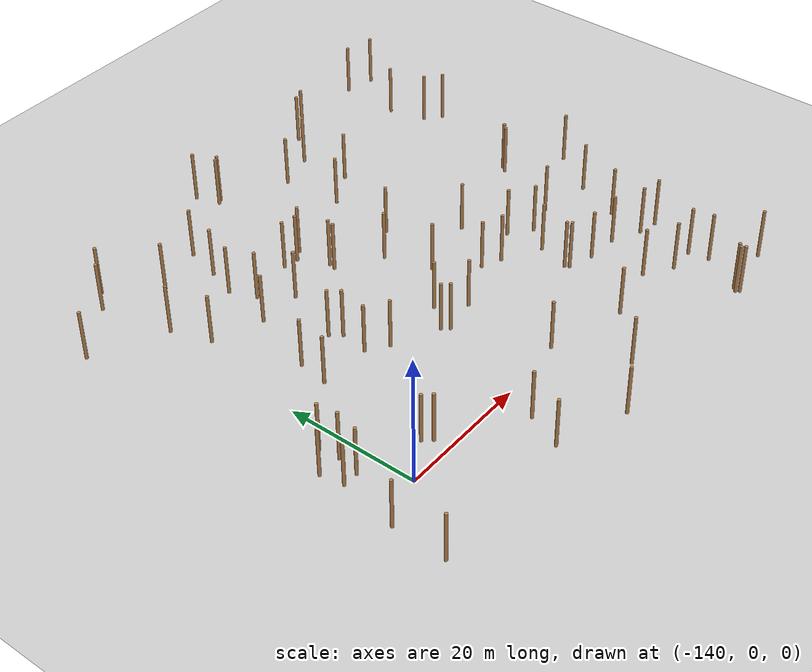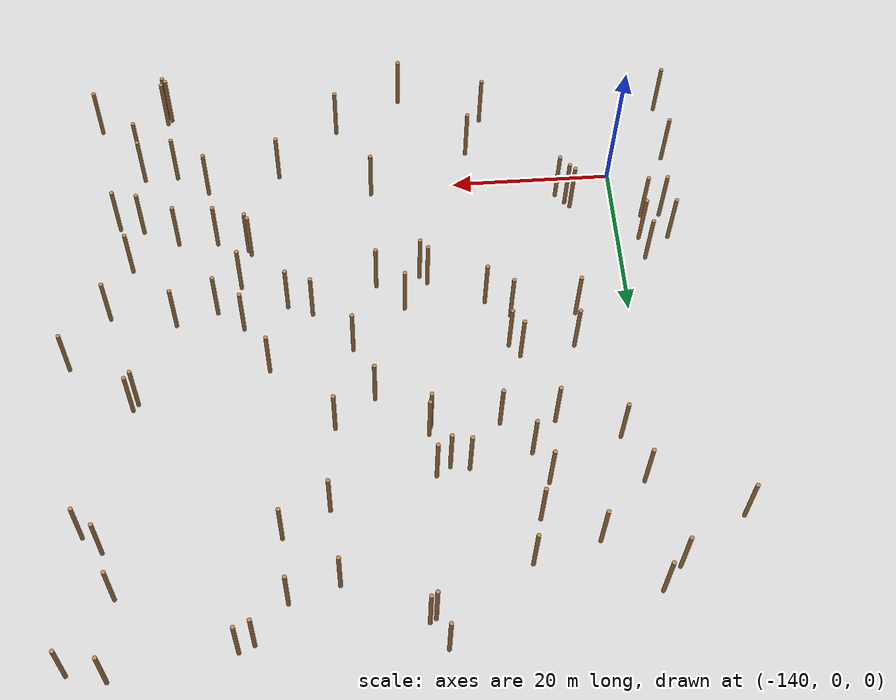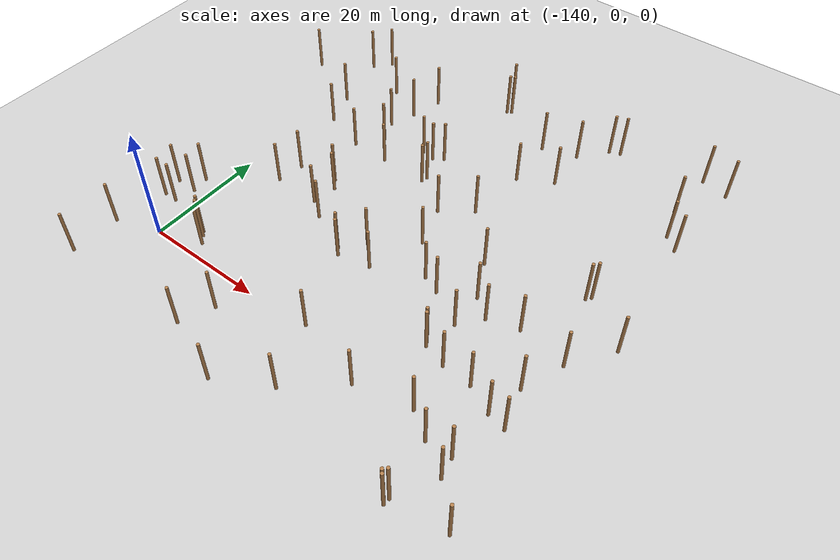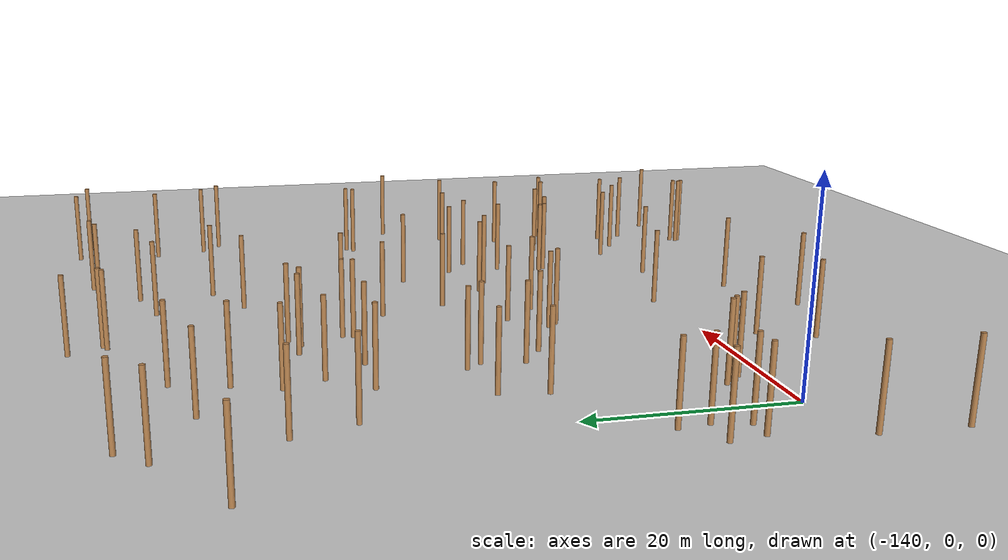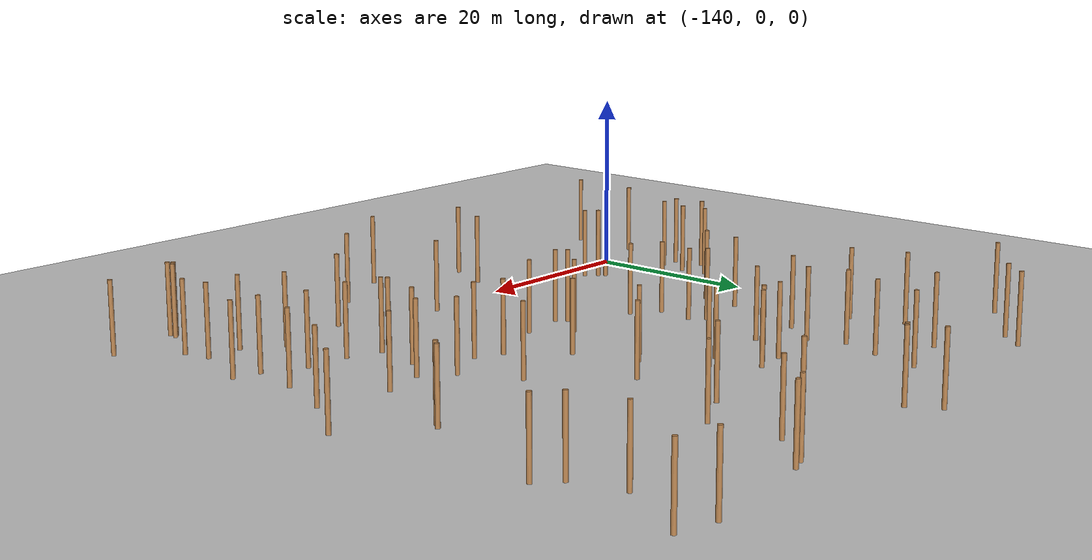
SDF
<sdf version="1.5">
 <world name="padure_tactica">
  <include><uri>model://sun</uri></include>
  <include><uri>model://ground_plane</uri></include>
  <model name="tree_2">
   <static>true</static>
   <pose>-147.35 -2.47 4.0 0 0 0</pose>
   <link name="link">
    <collision name="collision">
     <geometry><cylinder><radius>0.25</radius><length>8.0</length></cylinder></geometry>
    </collision>
    <visual name="visual">
     <geometry><cylinder><radius>0.25</radius><length>8.0</length></cylinder></geometry>
     <material>
      <script><uri>file://media/materials/scripts/gazebo.material</uri><name>Gazebo/Wood</name></script>
     </material>
    </visual>
   </link>
  </model>
  <model name="tree_7">
   <static>true</static>
   <pose>-77.65 4.32 4.0 0 0 0</pose>
   <link name="link">
    <collision name="collision">
     <geometry><cylinder><radius>0.25</radius><length>8.0</length></cylinder></geometry>
    </collision>
    <visual name="visual">
     <geometry><cylinder><radius>0.25</radius><length>8.0</length></cylinder></geometry>
     <material>
      <script><uri>file://media/materials/scripts/gazebo.material</uri><name>Gazebo/Wood</name></script>
     </material>
    </visual>
   </link>
  </model>
  <model name="tree_23">
   <static>true</static>
   <pose>-80.36 29.67 4.0 0 0 0</pose>
   <link name="link">
    <collision name="collision">
     <geometry><cylinder><radius>0.25</radius><length>8.0</length></cylinder></geometry>
    </collision>
    <visual name="visual">
     <geometry><cylinder><radius>0.25</radius><length>8.0</length></cylinder></geometry>
     <material>
      <script><uri>file://media/materials/scripts/gazebo.material</uri><name>Gazebo/Wood</name></script>
     </material>
    </visual>
   </link>
  </model>
  <model name="tree_27">
   <static>true</static>
   <pose>-122.47 18.02 4.0 0 0 0</pose>
   <link name="link">
    <collision name="collision">
     <geometry><cylinder><radius>0.25</radius><length>8.0</length></cylinder></geometry>
    </collision>
    <visual name="visual">
     <geometry><cylinder><radius>0.25</radius><length>8.0</length></cylinder></geometry>
     <material>
      <script><uri>file://media/materials/scripts/gazebo.material</uri><name>Gazebo/Wood</name></script>
     </material>
    </visual>
   </link>
  </model>
  <model name="tree_40">
   <static>true</static>
   <pose>-80.03 -6.21 4.0 0 0 0</pose>
   <link name="link">
    <collision name="collision">
     <geometry><cylinder><radius>0.25</radius><length>8.0</length></cylinder></geometry>
    </collision>
    <visual name="visual">
     <geometry><cylinder><radius>0.25</radius><length>8.0</length></cylinder></geometry>
     <material>
      <script><uri>file://media/materials/scripts/gazebo.material</uri><name>Gazebo/Wood</name></script>
     </material>
    </visual>
   </link>
  </model>
  <model name="tree_42">
   <static>true</static>
   <pose>-76.77 17.58 4.0 0 0 0</pose>
   <link name="link">
    <collision name="collision">
     <geometry><cylinder><radius>0.25</radius><length>8.0</length></cylinder></geometry>
    </collision>
    <visual name="visual">
     <geometry><cylinder><radius>0.25</radius><length>8.0</length></cylinder></geometry>
     <material>
      <script><uri>file://media/materials/scripts/gazebo.material</uri><name>Gazebo/Wood</name></script>
     </material>
    </visual>
   </link>
  </model>
  <model name="tree_44">
   <static>true</static>
   <pose>-93.52 60.29 4.0 0 0 0</pose>
   <link name="link">
    <collision name="collision">
     <geometry><cylinder><radius>0.25</radius><length>8.0</length></cylinder></geometry>
    </collision>
    <visual name="visual">
     <geometry><cylinder><radius>0.25</radius><length>8.0</length></cylinder></geometry>
     <material>
      <script><uri>file://media/materials/scripts/gazebo.material</uri><name>Gazebo/Wood</name></script>
     </material>
    </visual>
   </link>
  </model>
  <model name="tree_46">
   <static>true</static>
   <pose>-89.89 7.35 4.0 0 0 0</pose>
   <link name="link">
    <collision name="collision">
     <geometry><cylinder><radius>0.25</radius><length>8.0</length></cylinder></geometry>
    </collision>
    <visual name="visual">
     <geometry><cylinder><radius>0.25</radius><length>8.0</length></cylinder></geometry>
     <material>
      <script><uri>file://media/materials/scripts/gazebo.material</uri><name>Gazebo/Wood</name></script>
     </material>
    </visual>
   </link>
  </model>
  <model name="tree_51">
   <static>true</static>
   <pose>-108.27 30.69 4.0 0 0 0</pose>
   <link name="link">
    <collision name="collision">
     <geometry><cylinder><radius>0.25</radius><length>8.0</length></cylinder></geometry>
    </collision>
    <visual name="visual">
     <geometry><cylinder><radius>0.25</radius><length>8.0</length></cylinder></geometry>
     <material>
      <script><uri>file://media/materials/scripts/gazebo.material</uri><name>Gazebo/Wood</name></script>
     </material>
    </visual>
   </link>
  </model>
  <model name="tree_59">
   <static>true</static>
   <pose>-84.79 19.02 4.0 0 0 0</pose>
   <link name="link">
    <collision name="collision">
     <geometry><cylinder><radius>0.25</radius><length>8.0</length></cylinder></geometry>
    </collision>
    <visual name="visual">
     <geometry><cylinder><radius>0.25</radius><length>8.0</length></cylinder></geometry>
     <material>
      <script><uri>file://media/materials/scripts/gazebo.material</uri><name>Gazebo/Wood</name></script>
     </material>
    </visual>
   </link>
  </model>
  <model name="tree_108">
   <static>true</static>
   <pose>-89.82 17.54 4.0 0 0 0</pose>
   <link name="link">
    <collision name="collision">
     <geometry><cylinder><radius>0.25</radius><length>8.0</length></cylinder></geometry>
    </collision>
    <visual name="visual">
     <geometry><cylinder><radius>0.25</radius><length>8.0</length></cylinder></geometry>
     <material>
      <script><uri>file://media/materials/scripts/gazebo.material</uri><name>Gazebo/Wood</name></script>
     </material>
    </visual>
   </link>
  </model>
  <model name="tree_112">
   <static>true</static>
   <pose>-84.78 -3.30 4.0 0 0 0</pose>
   <link name="link">
    <collision name="collision">
     <geometry><cylinder><radius>0.25</radius><length>8.0</length></cylinder></geometry>
    </collision>
    <visual name="visual">
     <geometry><cylinder><radius>0.25</radius><length>8.0</length></cylinder></geometry>
     <material>
      <script><uri>file://media/materials/scripts/gazebo.material</uri><name>Gazebo/Wood</name></script>
     </material>
    </visual>
   </link>
  </model>
  <model name="tree_114">
   <static>true</static>
   <pose>-127.62 42.91 4.0 0 0 0</pose>
   <link name="link">
    <collision name="collision">
     <geometry><cylinder><radius>0.25</radius><length>8.0</length></cylinder></geometry>
    </collision>
    <visual name="visual">
     <geometry><cylinder><radius>0.25</radius><length>8.0</length></cylinder></geometry>
     <material>
      <script><uri>file://media/materials/scripts/gazebo.material</uri><name>Gazebo/Wood</name></script>
     </material>
    </visual>
   </link>
  </model>
  <model name="tree_176">
   <static>true</static>
   <pose>-80.62 4.94 4.0 0 0 0</pose>
   <link name="link">
    <collision name="collision">
     <geometry><cylinder><radius>0.25</radius><length>8.0</length></cylinder></geometry>
    </collision>
    <visual name="visual">
     <geometry><cylinder><radius>0.25</radius><length>8.0</length></cylinder></geometry>
     <material>
      <script><uri>file://media/materials/scripts/gazebo.material</uri><name>Gazebo/Wood</name></script>
     </material>
    </visual>
   </link>
  </model>
  <model name="tree_177">
   <static>true</static>
   <pose>-83.97 -12.80 4.0 0 0 0</pose>
   <link name="link">
    <collision name="collision">
     <geometry><cylinder><radius>0.25</radius><length>8.0</length></cylinder></geometry>
    </collision>
    <visual name="visual">
     <geometry><cylinder><radius>0.25</radius><length>8.0</length></cylinder></geometry>
     <material>
      <script><uri>file://media/materials/scripts/gazebo.material</uri><name>Gazebo/Wood</name></script>
     </material>
    </visual>
   </link>
  </model>
  <model name="tree_180">
   <static>true</static>
   <pose>-73.15 62.40 4.0 0 0 0</pose>
   <link name="link">
    <collision name="collision">
     <geometry><cylinder><radius>0.25</radius><length>8.0</length></cylinder></geometry>
    </collision>
    <visual name="visual">
     <geometry><cylinder><radius>0.25</radius><length>8.0</length></cylinder></geometry>
     <material>
      <script><uri>file://media/materials/scripts/gazebo.material</uri><name>Gazebo/Wood</name></script>
     </material>
    </visual>
   </link>
  </model>
  <model name="tree_184">
   <static>true</static>
   <pose>-138.71 56.84 4.0 0 0 0</pose>
   <link name="link">
    <collision name="collision">
     <geometry><cylinder><radius>0.25</radius><length>8.0</length></cylinder></geometry>
    </collision>
    <visual name="visual">
     <geometry><cylinder><radius>0.25</radius><length>8.0</length></cylinder></geometry>
     <material>
      <script><uri>file://media/materials/scripts/gazebo.material</uri><name>Gazebo/Wood</name></script>
     </material>
    </visual>
   </link>
  </model>
  <model name="tree_197">
   <static>true</static>
   <pose>-92.99 20.03 4.0 0 0 0</pose>
   <link name="link">
    <collision name="collision">
     <geometry><cylinder><radius>0.25</radius><length>8.0</length></cylinder></geometry>
    </collision>
    <visual name="visual">
     <geometry><cylinder><radius>0.25</radius><length>8.0</length></cylinder></geometry>
     <material>
      <script><uri>file://media/materials/scripts/gazebo.material</uri><name>Gazebo/Wood</name></script>
     </material>
    </visual>
   </link>
  </model>
  <model name="tree_203">
   <static>true</static>
   <pose>-125.41 20.13 4.0 0 0 0</pose>
   <link name="link">
    <collision name="collision">
     <geometry><cylinder><radius>0.25</radius><length>8.0</length></cylinder></geometry>
    </collision>
    <visual name="visual">
     <geometry><cylinder><radius>0.25</radius><length>8.0</length></cylinder></geometry>
     <material>
      <script><uri>file://media/materials/scripts/gazebo.material</uri><name>Gazebo/Wood</name></script>
     </material>
    </visual>
   </link>
  </model>
  <model name="tree_228">
   <static>true</static>
   <pose>-114.32 35.80 4.0 0 0 0</pose>
   <link name="link">
    <collision name="collision">
     <geometry><cylinder><radius>0.25</radius><length>8.0</length></cylinder></geometry>
    </collision>
    <visual name="visual">
     <geometry><cylinder><radius>0.25</radius><length>8.0</length></cylinder></geometry>
     <material>
      <script><uri>file://media/materials/scripts/gazebo.material</uri><name>Gazebo/Wood</name></script>
     </material>
    </visual>
   </link>
  </model>
  <model name="tree_237">
   <static>true</static>
   <pose>-85.01 7.05 4.0 0 0 0</pose>
   <link name="link">
    <collision name="collision">
     <geometry><cylinder><radius>0.25</radius><length>8.0</length></cylinder></geometry>
    </collision>
    <visual name="visual">
     <geometry><cylinder><radius>0.25</radius><length>8.0</length></cylinder></geometry>
     <material>
      <script><uri>file://media/materials/scripts/gazebo.material</uri><name>Gazebo/Wood</name></script>
     </material>
    </visual>
   </link>
  </model>
  <model name="tree_290">
   <static>true</static>
   <pose>-126.12 47.38 4.0 0 0 0</pose>
   <link name="link">
    <collision name="collision">
     <geometry><cylinder><radius>0.25</radius><length>8.0</length></cylinder></geometry>
    </collision>
    <visual name="visual">
     <geometry><cylinder><radius>0.25</radius><length>8.0</length></cylinder></geometry>
     <material>
      <script><uri>file://media/materials/scripts/gazebo.material</uri><name>Gazebo/Wood</name></script>
     </material>
    </visual>
   </link>
  </model>
  <model name="tree_305">
   <static>true</static>
   <pose>-106.05 23.77 4.0 0 0 0</pose>
   <link name="link">
    <collision name="collision">
     <geometry><cylinder><radius>0.25</radius><length>8.0</length></cylinder></geometry>
    </collision>
    <visual name="visual">
     <geometry><cylinder><radius>0.25</radius><length>8.0</length></cylinder></geometry>
     <material>
      <script><uri>file://media/materials/scripts/gazebo.material</uri><name>Gazebo/Wood</name></script>
     </material>
    </visual>
   </link>
  </model>
  <model name="tree_307">
   <static>true</static>
   <pose>-79.75 30.44 4.0 0 0 0</pose>
   <link name="link">
    <collision name="collision">
     <geometry><cylinder><radius>0.25</radius><length>8.0</length></cylinder></geometry>
    </collision>
    <visual name="visual">
     <geometry><cylinder><radius>0.25</radius><length>8.0</length></cylinder></geometry>
     <material>
      <script><uri>file://media/materials/scripts/gazebo.material</uri><name>Gazebo/Wood</name></script>
     </material>
    </visual>
   </link>
  </model>
  <model name="tree_328">
   <static>true</static>
   <pose>-109.47 0.82 4.0 0 0 0</pose>
   <link name="link">
    <collision name="collision">
     <geometry><cylinder><radius>0.25</radius><length>8.0</length></cylinder></geometry>
    </collision>
    <visual name="visual">
     <geometry><cylinder><radius>0.25</radius><length>8.0</length></cylinder></geometry>
     <material>
      <script><uri>file://media/materials/scripts/gazebo.material</uri><name>Gazebo/Wood</name></script>
     </material>
    </visual>
   </link>
  </model>
  <model name="tree_347">
   <static>true</static>
   <pose>-129.21 34.95 4.0 0 0 0</pose>
   <link name="link">
    <collision name="collision">
     <geometry><cylinder><radius>0.25</radius><length>8.0</length></cylinder></geometry>
    </collision>
    <visual name="visual">
     <geometry><cylinder><radius>0.25</radius><length>8.0</length></cylinder></geometry>
     <material>
      <script><uri>file://media/materials/scripts/gazebo.material</uri><name>Gazebo/Wood</name></script>
     </material>
    </visual>
   </link>
  </model>
  <model name="tree_368">
   <static>true</static>
   <pose>-114.78 41.24 4.0 0 0 0</pose>
   <link name="link">
    <collision name="collision">
     <geometry><cylinder><radius>0.25</radius><length>8.0</length></cylinder></geometry>
    </collision>
    <visual name="visual">
     <geometry><cylinder><radius>0.25</radius><length>8.0</length></cylinder></geometry>
     <material>
      <script><uri>file://media/materials/scripts/gazebo.material</uri><name>Gazebo/Wood</name></script>
     </material>
    </visual>
   </link>
  </model>
  <model name="tree_369">
   <static>true</static>
   <pose>-142.69 9.75 4.0 0 0 0</pose>
   <link name="link">
    <collision name="collision">
     <geometry><cylinder><radius>0.25</radius><length>8.0</length></cylinder></geometry>
    </collision>
    <visual name="visual">
     <geometry><cylinder><radius>0.25</radius><length>8.0</length></cylinder></geometry>
     <material>
      <script><uri>file://media/materials/scripts/gazebo.material</uri><name>Gazebo/Wood</name></script>
     </material>
    </visual>
   </link>
  </model>
  <model name="tree_390">
   <static>true</static>
   <pose>-92.74 14.00 4.0 0 0 0</pose>
   <link name="link">
    <collision name="collision">
     <geometry><cylinder><radius>0.25</radius><length>8.0</length></cylinder></geometry>
    </collision>
    <visual name="visual">
     <geometry><cylinder><radius>0.25</radius><length>8.0</length></cylinder></geometry>
     <material>
      <script><uri>file://media/materials/scripts/gazebo.material</uri><name>Gazebo/Wood</name></script>
     </material>
    </visual>
   </link>
  </model>
  <model name="tree_416">
   <static>true</static>
   <pose>-91.76 60.99 4.0 0 0 0</pose>
   <link name="link">
    <collision name="collision">
     <geometry><cylinder><radius>0.25</radius><length>8.0</length></cylinder></geometry>
    </collision>
    <visual name="visual">
     <geometry><cylinder><radius>0.25</radius><length>8.0</length></cylinder></geometry>
     <material>
      <script><uri>file://media/materials/scripts/gazebo.material</uri><name>Gazebo/Wood</name></script>
     </material>
    </visual>
   </link>
  </model>
  <model name="tree_417">
   <static>true</static>
   <pose>-77.59 63.39 4.0 0 0 0</pose>
   <link name="link">
    <collision name="collision">
     <geometry><cylinder><radius>0.25</radius><length>8.0</length></cylinder></geometry>
    </collision>
    <visual name="visual">
     <geometry><cylinder><radius>0.25</radius><length>8.0</length></cylinder></geometry>
     <material>
      <script><uri>file://media/materials/scripts/gazebo.material</uri><name>Gazebo/Wood</name></script>
     </material>
    </visual>
   </link>
  </model>
  <model name="tree_426">
   <static>true</static>
   <pose>-133.39 20.32 4.0 0 0 0</pose>
   <link name="link">
    <collision name="collision">
     <geometry><cylinder><radius>0.25</radius><length>8.0</length></cylinder></geometry>
    </collision>
    <visual name="visual">
     <geometry><cylinder><radius>0.25</radius><length>8.0</length></cylinder></geometry>
     <material>
      <script><uri>file://media/materials/scripts/gazebo.material</uri><name>Gazebo/Wood</name></script>
     </material>
    </visual>
   </link>
  </model>
  <model name="tree_438">
   <static>true</static>
   <pose>-97.30 55.74 4.0 0 0 0</pose>
   <link name="link">
    <collision name="collision">
     <geometry><cylinder><radius>0.25</radius><length>8.0</length></cylinder></geometry>
    </collision>
    <visual name="visual">
     <geometry><cylinder><radius>0.25</radius><length>8.0</length></cylinder></geometry>
     <material>
      <script><uri>file://media/materials/scripts/gazebo.material</uri><name>Gazebo/Wood</name></script>
     </material>
    </visual>
   </link>
  </model>
  <model name="tree_440">
   <static>true</static>
   <pose>-112.60 18.31 4.0 0 0 0</pose>
   <link name="link">
    <collision name="collision">
     <geometry><cylinder><radius>0.25</radius><length>8.0</length></cylinder></geometry>
    </collision>
    <visual name="visual">
     <geometry><cylinder><radius>0.25</radius><length>8.0</length></cylinder></geometry>
     <material>
      <script><uri>file://media/materials/scripts/gazebo.material</uri><name>Gazebo/Wood</name></script>
     </material>
    </visual>
   </link>
  </model>
  <model name="tree_444">
   <static>true</static>
   <pose>-115.62 14.80 4.0 0 0 0</pose>
   <link name="link">
    <collision name="collision">
     <geometry><cylinder><radius>0.25</radius><length>8.0</length></cylinder></geometry>
    </collision>
    <visual name="visual">
     <geometry><cylinder><radius>0.25</radius><length>8.0</length></cylinder></geometry>
     <material>
      <script><uri>file://media/materials/scripts/gazebo.material</uri><name>Gazebo/Wood</name></script>
     </material>
    </visual>
   </link>
  </model>
  <model name="tree_455">
   <static>true</static>
   <pose>-74.95 -11.36 4.0 0 0 0</pose>
   <link name="link">
    <collision name="collision">
     <geometry><cylinder><radius>0.25</radius><length>8.0</length></cylinder></geometry>
    </collision>
    <visual name="visual">
     <geometry><cylinder><radius>0.25</radius><length>8.0</length></cylinder></geometry>
     <material>
      <script><uri>file://media/materials/scripts/gazebo.material</uri><name>Gazebo/Wood</name></script>
     </material>
    </visual>
   </link>
  </model>
  <model name="tree_476">
   <static>true</static>
   <pose>-138.56 43.41 4.0 0 0 0</pose>
   <link name="link">
    <collision name="collision">
     <geometry><cylinder><radius>0.25</radius><length>8.0</length></cylinder></geometry>
    </collision>
    <visual name="visual">
     <geometry><cylinder><radius>0.25</radius><length>8.0</length></cylinder></geometry>
     <material>
      <script><uri>file://media/materials/scripts/gazebo.material</uri><name>Gazebo/Wood</name></script>
     </material>
    </visual>
   </link>
  </model>
  <model name="tree_482">
   <static>true</static>
   <pose>-101.36 18.46 4.0 0 0 0</pose>
   <link name="link">
    <collision name="collision">
     <geometry><cylinder><radius>0.25</radius><length>8.0</length></cylinder></geometry>
    </collision>
    <visual name="visual">
     <geometry><cylinder><radius>0.25</radius><length>8.0</length></cylinder></geometry>
     <material>
      <script><uri>file://media/materials/scripts/gazebo.material</uri><name>Gazebo/Wood</name></script>
     </material>
    </visual>
   </link>
  </model>
  <model name="tree_521">
   <static>true</static>
   <pose>-102.38 44.79 4.0 0 0 0</pose>
   <link name="link">
    <collision name="collision">
     <geometry><cylinder><radius>0.25</radius><length>8.0</length></cylinder></geometry>
    </collision>
    <visual name="visual">
     <geometry><cylinder><radius>0.25</radius><length>8.0</length></cylinder></geometry>
     <material>
      <script><uri>file://media/materials/scripts/gazebo.material</uri><name>Gazebo/Wood</name></script>
     </material>
    </visual>
   </link>
  </model>
  <model name="tree_540">
   <static>true</static>
   <pose>-147.53 -10.66 4.0 0 0 0</pose>
   <link name="link">
    <collision name="collision">
     <geometry><cylinder><radius>0.25</radius><length>8.0</length></cylinder></geometry>
    </collision>
    <visual name="visual">
     <geometry><cylinder><radius>0.25</radius><length>8.0</length></cylinder></geometry>
     <material>
      <script><uri>file://media/materials/scripts/gazebo.material</uri><name>Gazebo/Wood</name></script>
     </material>
    </visual>
   </link>
  </model>
  <model name="tree_547">
   <static>true</static>
   <pose>-113.39 58.48 4.0 0 0 0</pose>
   <link name="link">
    <collision name="collision">
     <geometry><cylinder><radius>0.25</radius><length>8.0</length></cylinder></geometry>
    </collision>
    <visual name="visual">
     <geometry><cylinder><radius>0.25</radius><length>8.0</length></cylinder></geometry>
     <material>
      <script><uri>file://media/materials/scripts/gazebo.material</uri><name>Gazebo/Wood</name></script>
     </material>
    </visual>
   </link>
  </model>
  <model name="tree_562">
   <static>true</static>
   <pose>-105.47 -9.39 4.0 0 0 0</pose>
   <link name="link">
    <collision name="collision">
     <geometry><cylinder><radius>0.25</radius><length>8.0</length></cylinder></geometry>
    </collision>
    <visual name="visual">
     <geometry><cylinder><radius>0.25</radius><length>8.0</length></cylinder></geometry>
     <material>
      <script><uri>file://media/materials/scripts/gazebo.material</uri><name>Gazebo/Wood</name></script>
     </material>
    </visual>
   </link>
  </model>
  <model name="tree_575">
   <static>true</static>
   <pose>-98.39 17.18 4.0 0 0 0</pose>
   <link name="link">
    <collision name="collision">
     <geometry><cylinder><radius>0.25</radius><length>8.0</length></cylinder></geometry>
    </collision>
    <visual name="visual">
     <geometry><cylinder><radius>0.25</radius><length>8.0</length></cylinder></geometry>
     <material>
      <script><uri>file://media/materials/scripts/gazebo.material</uri><name>Gazebo/Wood</name></script>
     </material>
    </visual>
   </link>
  </model>
  <model name="tree_599">
   <static>true</static>
   <pose>-116.42 40.15 4.0 0 0 0</pose>
   <link name="link">
    <collision name="collision">
     <geometry><cylinder><radius>0.25</radius><length>8.0</length></cylinder></geometry>
    </collision>
    <visual name="visual">
     <geometry><cylinder><radius>0.25</radius><length>8.0</length></cylinder></geometry>
     <material>
      <script><uri>file://media/materials/scripts/gazebo.material</uri><name>Gazebo/Wood</name></script>
     </material>
    </visual>
   </link>
  </model>
  <model name="tree_604">
   <static>true</static>
   <pose>-141.04 54.11 4.0 0 0 0</pose>
   <link name="link">
    <collision name="collision">
     <geometry><cylinder><radius>0.25</radius><length>8.0</length></cylinder></geometry>
    </collision>
    <visual name="visual">
     <geometry><cylinder><radius>0.25</radius><length>8.0</length></cylinder></geometry>
     <material>
      <script><uri>file://media/materials/scripts/gazebo.material</uri><name>Gazebo/Wood</name></script>
     </material>
    </visual>
   </link>
  </model>
  <model name="tree_631">
   <static>true</static>
   <pose>-114.74 13.78 4.0 0 0 0</pose>
   <link name="link">
    <collision name="collision">
     <geometry><cylinder><radius>0.25</radius><length>8.0</length></cylinder></geometry>
    </collision>
    <visual name="visual">
     <geometry><cylinder><radius>0.25</radius><length>8.0</length></cylinder></geometry>
     <material>
      <script><uri>file://media/materials/scripts/gazebo.material</uri><name>Gazebo/Wood</name></script>
     </material>
    </visual>
   </link>
  </model>
  <model name="tree_654">
   <static>true</static>
   <pose>-78.16 53.99 4.0 0 0 0</pose>
   <link name="link">
    <collision name="collision">
     <geometry><cylinder><radius>0.25</radius><length>8.0</length></cylinder></geometry>
    </collision>
    <visual name="visual">
     <geometry><cylinder><radius>0.25</radius><length>8.0</length></cylinder></geometry>
     <material>
      <script><uri>file://media/materials/scripts/gazebo.material</uri><name>Gazebo/Wood</name></script>
     </material>
    </visual>
   </link>
  </model>
  <model name="tree_667">
   <static>true</static>
   <pose>-149.25 48.40 4.0 0 0 0</pose>
   <link name="link">
    <collision name="collision">
     <geometry><cylinder><radius>0.25</radius><length>8.0</length></cylinder></geometry>
    </collision>
    <visual name="visual">
     <geometry><cylinder><radius>0.25</radius><length>8.0</length></cylinder></geometry>
     <material>
      <script><uri>file://media/materials/scripts/gazebo.material</uri><name>Gazebo/Wood</name></script>
     </material>
    </visual>
   </link>
  </model>
  <model name="tree_677">
   <static>true</static>
   <pose>-132.70 24.87 4.0 0 0 0</pose>
   <link name="link">
    <collision name="collision">
     <geometry><cylinder><radius>0.25</radius><length>8.0</length></cylinder></geometry>
    </collision>
    <visual name="visual">
     <geometry><cylinder><radius>0.25</radius><length>8.0</length></cylinder></geometry>
     <material>
      <script><uri>file://media/materials/scripts/gazebo.material</uri><name>Gazebo/Wood</name></script>
     </material>
    </visual>
   </link>
  </model>
  <model name="tree_692">
   <static>true</static>
   <pose>-72.06 24.39 4.0 0 0 0</pose>
   <link name="link">
    <collision name="collision">
     <geometry><cylinder><radius>0.25</radius><length>8.0</length></cylinder></geometry>
    </collision>
    <visual name="visual">
     <geometry><cylinder><radius>0.25</radius><length>8.0</length></cylinder></geometry>
     <material>
      <script><uri>file://media/materials/scripts/gazebo.material</uri><name>Gazebo/Wood</name></script>
     </material>
    </visual>
   </link>
  </model>
  <model name="tree_723">
   <static>true</static>
   <pose>-88.76 -0.61 4.0 0 0 0</pose>
   <link name="link">
    <collision name="collision">
     <geometry><cylinder><radius>0.25</radius><length>8.0</length></cylinder></geometry>
    </collision>
    <visual name="visual">
     <geometry><cylinder><radius>0.25</radius><length>8.0</length></cylinder></geometry>
     <material>
      <script><uri>file://media/materials/scripts/gazebo.material</uri><name>Gazebo/Wood</name></script>
     </material>
    </visual>
   </link>
  </model>
  <model name="tree_733">
   <static>true</static>
   <pose>-79.35 10.76 4.0 0 0 0</pose>
   <link name="link">
    <collision name="collision">
     <geometry><cylinder><radius>0.25</radius><length>8.0</length></cylinder></geometry>
    </collision>
    <visual name="visual">
     <geometry><cylinder><radius>0.25</radius><length>8.0</length></cylinder></geometry>
     <material>
      <script><uri>file://media/materials/scripts/gazebo.material</uri><name>Gazebo/Wood</name></script>
     </material>
    </visual>
   </link>
  </model>
  <model name="tree_734">
   <static>true</static>
   <pose>-145.75 6.37 4.0 0 0 0</pose>
   <link name="link">
    <collision name="collision">
     <geometry><cylinder><radius>0.25</radius><length>8.0</length></cylinder></geometry>
    </collision>
    <visual name="visual">
     <geometry><cylinder><radius>0.25</radius><length>8.0</length></cylinder></geometry>
     <material>
      <script><uri>file://media/materials/scripts/gazebo.material</uri><name>Gazebo/Wood</name></script>
     </material>
    </visual>
   </link>
  </model>
  <model name="tree_748">
   <static>true</static>
   <pose>-95.96 26.13 4.0 0 0 0</pose>
   <link name="link">
    <collision name="collision">
     <geometry><cylinder><radius>0.25</radius><length>8.0</length></cylinder></geometry>
    </collision>
    <visual name="visual">
     <geometry><cylinder><radius>0.25</radius><length>8.0</length></cylinder></geometry>
     <material>
      <script><uri>file://media/materials/scripts/gazebo.material</uri><name>Gazebo/Wood</name></script>
     </material>
    </visual>
   </link>
  </model>
  <model name="tree_751">
   <static>true</static>
   <pose>-94.06 9.18 4.0 0 0 0</pose>
   <link name="link">
    <collision name="collision">
     <geometry><cylinder><radius>0.25</radius><length>8.0</length></cylinder></geometry>
    </collision>
    <visual name="visual">
     <geometry><cylinder><radius>0.25</radius><length>8.0</length></cylinder></geometry>
     <material>
      <script><uri>file://media/materials/scripts/gazebo.material</uri><name>Gazebo/Wood</name></script>
     </material>
    </visual>
   </link>
  </model>
  <model name="tree_753">
   <static>true</static>
   <pose>-122.69 34.88 4.0 0 0 0</pose>
   <link name="link">
    <collision name="collision">
     <geometry><cylinder><radius>0.25</radius><length>8.0</length></cylinder></geometry>
    </collision>
    <visual name="visual">
     <geometry><cylinder><radius>0.25</radius><length>8.0</length></cylinder></geometry>
     <material>
      <script><uri>file://media/materials/scripts/gazebo.material</uri><name>Gazebo/Wood</name></script>
     </material>
    </visual>
   </link>
  </model>
  <model name="tree_754">
   <static>true</static>
   <pose>-112.69 58.89 4.0 0 0 0</pose>
   <link name="link">
    <collision name="collision">
     <geometry><cylinder><radius>0.25</radius><length>8.0</length></cylinder></geometry>
    </collision>
    <visual name="visual">
     <geometry><cylinder><radius>0.25</radius><length>8.0</length></cylinder></geometry>
     <material>
      <script><uri>file://media/materials/scripts/gazebo.material</uri><name>Gazebo/Wood</name></script>
     </material>
    </visual>
   </link>
  </model>
  <model name="tree_761">
   <static>true</static>
   <pose>-132.57 50.47 4.0 0 0 0</pose>
   <link name="link">
    <collision name="collision">
     <geometry><cylinder><radius>0.25</radius><length>8.0</length></cylinder></geometry>
    </collision>
    <visual name="visual">
     <geometry><cylinder><radius>0.25</radius><length>8.0</length></cylinder></geometry>
     <material>
      <script><uri>file://media/materials/scripts/gazebo.material</uri><name>Gazebo/Wood</name></script>
     </material>
    </visual>
   </link>
  </model>
  <model name="tree_780">
   <static>true</static>
   <pose>-93.70 8.56 4.0 0 0 0</pose>
   <link name="link">
    <collision name="collision">
     <geometry><cylinder><radius>0.25</radius><length>8.0</length></cylinder></geometry>
    </collision>
    <visual name="visual">
     <geometry><cylinder><radius>0.25</radius><length>8.0</length></cylinder></geometry>
     <material>
      <script><uri>file://media/materials/scripts/gazebo.material</uri><name>Gazebo/Wood</name></script>
     </material>
    </visual>
   </link>
  </model>
  <model name="tree_791">
   <static>true</static>
   <pose>-83.57 -13.27 4.0 0 0 0</pose>
   <link name="link">
    <collision name="collision">
     <geometry><cylinder><radius>0.25</radius><length>8.0</length></cylinder></geometry>
    </collision>
    <visual name="visual">
     <geometry><cylinder><radius>0.25</radius><length>8.0</length></cylinder></geometry>
     <material>
      <script><uri>file://media/materials/scripts/gazebo.material</uri><name>Gazebo/Wood</name></script>
     </material>
    </visual>
   </link>
  </model>
  <model name="tree_801">
   <static>true</static>
   <pose>-134.60 4.34 4.0 0 0 0</pose>
   <link name="link">
    <collision name="collision">
     <geometry><cylinder><radius>0.25</radius><length>8.0</length></cylinder></geometry>
    </collision>
    <visual name="visual">
     <geometry><cylinder><radius>0.25</radius><length>8.0</length></cylinder></geometry>
     <material>
      <script><uri>file://media/materials/scripts/gazebo.material</uri><name>Gazebo/Wood</name></script>
     </material>
    </visual>
   </link>
  </model>
  <model name="tree_824">
   <static>true</static>
   <pose>-132.93 2.49 4.0 0 0 0</pose>
   <link name="link">
    <collision name="collision">
     <geometry><cylinder><radius>0.25</radius><length>8.0</length></cylinder></geometry>
    </collision>
    <visual name="visual">
     <geometry><cylinder><radius>0.25</radius><length>8.0</length></cylinder></geometry>
     <material>
      <script><uri>file://media/materials/scripts/gazebo.material</uri><name>Gazebo/Wood</name></script>
     </material>
    </visual>
   </link>
  </model>
  <model name="tree_826">
   <static>true</static>
   <pose>-136.61 37.56 4.0 0 0 0</pose>
   <link name="link">
    <collision name="collision">
     <geometry><cylinder><radius>0.25</radius><length>8.0</length></cylinder></geometry>
    </collision>
    <visual name="visual">
     <geometry><cylinder><radius>0.25</radius><length>8.0</length></cylinder></geometry>
     <material>
      <script><uri>file://media/materials/scripts/gazebo.material</uri><name>Gazebo/Wood</name></script>
     </material>
    </visual>
   </link>
  </model>
  <model name="tree_831">
   <static>true</static>
   <pose>-134.00 3.70 4.0 0 0 0</pose>
   <link name="link">
    <collision name="collision">
     <geometry><cylinder><radius>0.25</radius><length>8.0</length></cylinder></geometry>
    </collision>
    <visual name="visual">
     <geometry><cylinder><radius>0.25</radius><length>8.0</length></cylinder></geometry>
     <material>
      <script><uri>file://media/materials/scripts/gazebo.material</uri><name>Gazebo/Wood</name></script>
     </material>
    </visual>
   </link>
  </model>
  <model name="tree_841">
   <static>true</static>
   <pose>-80.63 -3.18 4.0 0 0 0</pose>
   <link name="link">
    <collision name="collision">
     <geometry><cylinder><radius>0.25</radius><length>8.0</length></cylinder></geometry>
    </collision>
    <visual name="visual">
     <geometry><cylinder><radius>0.25</radius><length>8.0</length></cylinder></geometry>
     <material>
      <script><uri>file://media/materials/scripts/gazebo.material</uri><name>Gazebo/Wood</name></script>
     </material>
    </visual>
   </link>
  </model>
  <model name="tree_873">
   <static>true</static>
   <pose>-114.57 34.74 4.0 0 0 0</pose>
   <link name="link">
    <collision name="collision">
     <geometry><cylinder><radius>0.25</radius><length>8.0</length></cylinder></geometry>
    </collision>
    <visual name="visual">
     <geometry><cylinder><radius>0.25</radius><length>8.0</length></cylinder></geometry>
     <material>
      <script><uri>file://media/materials/scripts/gazebo.material</uri><name>Gazebo/Wood</name></script>
     </material>
    </visual>
   </link>
  </model>
  <model name="tree_882">
   <static>true</static>
   <pose>-124.31 -10.20 4.0 0 0 0</pose>
   <link name="link">
    <collision name="collision">
     <geometry><cylinder><radius>0.25</radius><length>8.0</length></cylinder></geometry>
    </collision>
    <visual name="visual">
     <geometry><cylinder><radius>0.25</radius><length>8.0</length></cylinder></geometry>
     <material>
      <script><uri>file://media/materials/scripts/gazebo.material</uri><name>Gazebo/Wood</name></script>
     </material>
    </visual>
   </link>
  </model>
  <model name="tree_897">
   <static>true</static>
   <pose>-97.82 -2.61 4.0 0 0 0</pose>
   <link name="link">
    <collision name="collision">
     <geometry><cylinder><radius>0.25</radius><length>8.0</length></cylinder></geometry>
    </collision>
    <visual name="visual">
     <geometry><cylinder><radius>0.25</radius><length>8.0</length></cylinder></geometry>
     <material>
      <script><uri>file://media/materials/scripts/gazebo.material</uri><name>Gazebo/Wood</name></script>
     </material>
    </visual>
   </link>
  </model>
  <model name="tree_932">
   <static>true</static>
   <pose>-83.46 -12.27 4.0 0 0 0</pose>
   <link name="link">
    <collision name="collision">
     <geometry><cylinder><radius>0.25</radius><length>8.0</length></cylinder></geometry>
    </collision>
    <visual name="visual">
     <geometry><cylinder><radius>0.25</radius><length>8.0</length></cylinder></geometry>
     <material>
      <script><uri>file://media/materials/scripts/gazebo.material</uri><name>Gazebo/Wood</name></script>
     </material>
    </visual>
   </link>
  </model>
  <model name="tree_936">
   <static>true</static>
   <pose>-76.64 48.38 4.0 0 0 0</pose>
   <link name="link">
    <collision name="collision">
     <geometry><cylinder><radius>0.25</radius><length>8.0</length></cylinder></geometry>
    </collision>
    <visual name="visual">
     <geometry><cylinder><radius>0.25</radius><length>8.0</length></cylinder></geometry>
     <material>
      <script><uri>file://media/materials/scripts/gazebo.material</uri><name>Gazebo/Wood</name></script>
     </material>
    </visual>
   </link>
  </model>
  <model name="tree_963">
   <static>true</static>
   <pose>-114.53 62.07 4.0 0 0 0</pose>
   <link name="link">
    <collision name="collision">
     <geometry><cylinder><radius>0.25</radius><length>8.0</length></cylinder></geometry>
    </collision>
    <visual name="visual">
     <geometry><cylinder><radius>0.25</radius><length>8.0</length></cylinder></geometry>
     <material>
      <script><uri>file://media/materials/scripts/gazebo.material</uri><name>Gazebo/Wood</name></script>
     </material>
    </visual>
   </link>
  </model>
  <model name="tree_971">
   <static>true</static>
   <pose>-103.11 53.96 4.0 0 0 0</pose>
   <link name="link">
    <collision name="collision">
     <geometry><cylinder><radius>0.25</radius><length>8.0</length></cylinder></geometry>
    </collision>
    <visual name="visual">
     <geometry><cylinder><radius>0.25</radius><length>8.0</length></cylinder></geometry>
     <material>
      <script><uri>file://media/materials/scripts/gazebo.material</uri><name>Gazebo/Wood</name></script>
     </material>
    </visual>
   </link>
  </model>
  <model name="tree_986">
   <static>true</static>
   <pose>-113.83 -14.01 4.0 0 0 0</pose>
   <link name="link">
    <collision name="collision">
     <geometry><cylinder><radius>0.25</radius><length>8.0</length></cylinder></geometry>
    </collision>
    <visual name="visual">
     <geometry><cylinder><radius>0.25</radius><length>8.0</length></cylinder></geometry>
     <material>
      <script><uri>file://media/materials/scripts/gazebo.material</uri><name>Gazebo/Wood</name></script>
     </material>
    </visual>
   </link>
  </model>
  <model name="tree_996">
   <static>true</static>
   <pose>-124.80 24.36 4.0 0 0 0</pose>
   <link name="link">
    <collision name="collision">
     <geometry><cylinder><radius>0.25</radius><length>8.0</length></cylinder></geometry>
    </collision>
    <visual name="visual">
     <geometry><cylinder><radius>0.25</radius><length>8.0</length></cylinder></geometry>
     <material>
      <script><uri>file://media/materials/scripts/gazebo.material</uri><name>Gazebo/Wood</name></script>
     </material>
    </visual>
   </link>
  </model>
  <model name="tree_1017">
   <static>true</static>
   <pose>-143.41 6.36 4.0 0 0 0</pose>
   <link name="link">
    <collision name="collision">
     <geometry><cylinder><radius>0.25</radius><length>8.0</length></cylinder></geometry>
    </collision>
    <visual name="visual">
     <geometry><cylinder><radius>0.25</radius><length>8.0</length></cylinder></geometry>
     <material>
      <script><uri>file://media/materials/scripts/gazebo.material</uri><name>Gazebo/Wood</name></script>
     </material>
    </visual>
   </link>
  </model>
  <model name="tree_1044">
   <static>true</static>
   <pose>-143.08 12.76 4.0 0 0 0</pose>
   <link name="link">
    <collision name="collision">
     <geometry><cylinder><radius>0.25</radius><length>8.0</length></cylinder></geometry>
    </collision>
    <visual name="visual">
     <geometry><cylinder><radius>0.25</radius><length>8.0</length></cylinder></geometry>
     <material>
      <script><uri>file://media/materials/scripts/gazebo.material</uri><name>Gazebo/Wood</name></script>
     </material>
    </visual>
   </link>
  </model>
  <model name="tree_1095">
   <static>true</static>
   <pose>-74.37 46.39 4.0 0 0 0</pose>
   <link name="link">
    <collision name="collision">
     <geometry><cylinder><radius>0.25</radius><length>8.0</length></cylinder></geometry>
    </collision>
    <visual name="visual">
     <geometry><cylinder><radius>0.25</radius><length>8.0</length></cylinder></geometry>
     <material>
      <script><uri>file://media/materials/scripts/gazebo.material</uri><name>Gazebo/Wood</name></script>
     </material>
    </visual>
   </link>
  </model>
  <model name="tree_1096">
   <static>true</static>
   <pose>-126.08 39.00 4.0 0 0 0</pose>
   <link name="link">
    <collision name="collision">
     <geometry><cylinder><radius>0.25</radius><length>8.0</length></cylinder></geometry>
    </collision>
    <visual name="visual">
     <geometry><cylinder><radius>0.25</radius><length>8.0</length></cylinder></geometry>
     <material>
      <script><uri>file://media/materials/scripts/gazebo.material</uri><name>Gazebo/Wood</name></script>
     </material>
    </visual>
   </link>
  </model>
  <model name="tree_1102">
   <static>true</static>
   <pose>-109.32 14.84 4.0 0 0 0</pose>
   <link name="link">
    <collision name="collision">
     <geometry><cylinder><radius>0.25</radius><length>8.0</length></cylinder></geometry>
    </collision>
    <visual name="visual">
     <geometry><cylinder><radius>0.25</radius><length>8.0</length></cylinder></geometry>
     <material>
      <script><uri>file://media/materials/scripts/gazebo.material</uri><name>Gazebo/Wood</name></script>
     </material>
    </visual>
   </link>
  </model>
  <model name="tree_1132">
   <static>true</static>
   <pose>-124.70 52.77 4.0 0 0 0</pose>
   <link name="link">
    <collision name="collision">
     <geometry><cylinder><radius>0.25</radius><length>8.0</length></cylinder></geometry>
    </collision>
    <visual name="visual">
     <geometry><cylinder><radius>0.25</radius><length>8.0</length></cylinder></geometry>
     <material>
      <script><uri>file://media/materials/scripts/gazebo.material</uri><name>Gazebo/Wood</name></script>
     </material>
    </visual>
   </link>
  </model>
  <model name="tree_1134">
   <static>true</static>
   <pose>-103.41 34.36 4.0 0 0 0</pose>
   <link name="link">
    <collision name="collision">
     <geometry><cylinder><radius>0.25</radius><length>8.0</length></cylinder></geometry>
    </collision>
    <visual name="visual">
     <geometry><cylinder><radius>0.25</radius><length>8.0</length></cylinder></geometry>
     <material>
      <script><uri>file://media/materials/scripts/gazebo.material</uri><name>Gazebo/Wood</name></script>
     </material>
    </visual>
   </link>
  </model>
  <model name="tree_1173">
   <static>true</static>
   <pose>-118.66 40.56 4.0 0 0 0</pose>
   <link name="link">
    <collision name="collision">
     <geometry><cylinder><radius>0.25</radius><length>8.0</length></cylinder></geometry>
    </collision>
    <visual name="visual">
     <geometry><cylinder><radius>0.25</radius><length>8.0</length></cylinder></geometry>
     <material>
      <script><uri>file://media/materials/scripts/gazebo.material</uri><name>Gazebo/Wood</name></script>
     </material>
    </visual>
   </link>
  </model>
  <model name="tree_1174">
   <static>true</static>
   <pose>-146.34 9.84 4.0 0 0 0</pose>
   <link name="link">
    <collision name="collision">
     <geometry><cylinder><radius>0.25</radius><length>8.0</length></cylinder></geometry>
    </collision>
    <visual name="visual">
     <geometry><cylinder><radius>0.25</radius><length>8.0</length></cylinder></geometry>
     <material>
      <script><uri>file://media/materials/scripts/gazebo.material</uri><name>Gazebo/Wood</name></script>
     </material>
    </visual>
   </link>
  </model>
  <model name="tree_1181">
   <static>true</static>
   <pose>-96.84 47.89 4.0 0 0 0</pose>
   <link name="link">
    <collision name="collision">
     <geometry><cylinder><radius>0.25</radius><length>8.0</length></cylinder></geometry>
    </collision>
    <visual name="visual">
     <geometry><cylinder><radius>0.25</radius><length>8.0</length></cylinder></geometry>
     <material>
      <script><uri>file://media/materials/scripts/gazebo.material</uri><name>Gazebo/Wood</name></script>
     </material>
    </visual>
   </link>
  </model>
  <model name="tree_1188">
   <static>true</static>
   <pose>-122.04 -4.90 4.0 0 0 0</pose>
   <link name="link">
    <collision name="collision">
     <geometry><cylinder><radius>0.25</radius><length>8.0</length></cylinder></geometry>
    </collision>
    <visual name="visual">
     <geometry><cylinder><radius>0.25</radius><length>8.0</length></cylinder></geometry>
     <material>
      <script><uri>file://media/materials/scripts/gazebo.material</uri><name>Gazebo/Wood</name></script>
     </material>
    </visual>
   </link>
  </model>
  <model name="tree_1189">
   <static>true</static>
   <pose>-126.04 25.92 4.0 0 0 0</pose>
   <link name="link">
    <collision name="collision">
     <geometry><cylinder><radius>0.25</radius><length>8.0</length></cylinder></geometry>
    </collision>
    <visual name="visual">
     <geometry><cylinder><radius>0.25</radius><length>8.0</length></cylinder></geometry>
     <material>
      <script><uri>file://media/materials/scripts/gazebo.material</uri><name>Gazebo/Wood</name></script>
     </material>
    </visual>
   </link>
  </model>
 </world>
</sdf>
